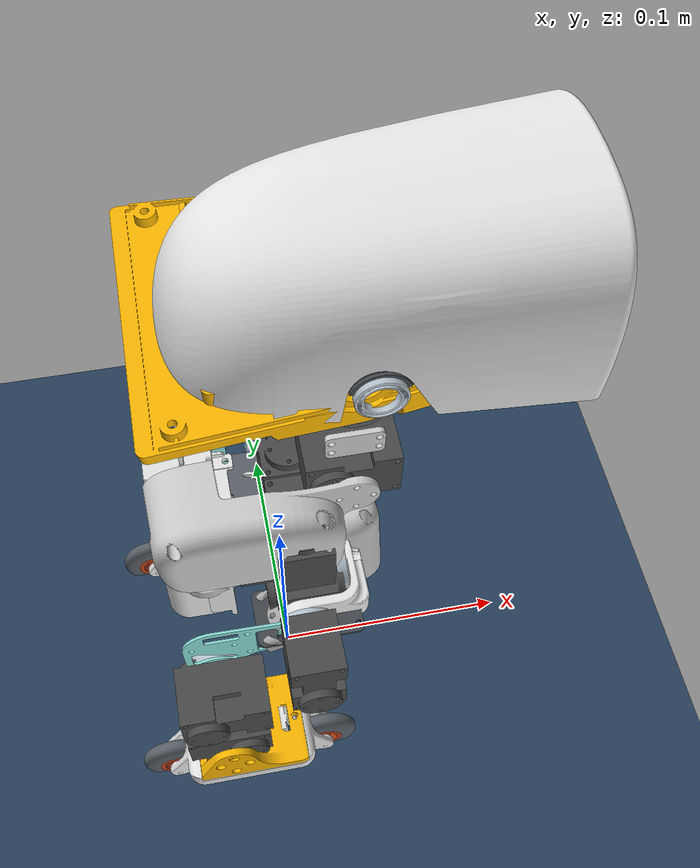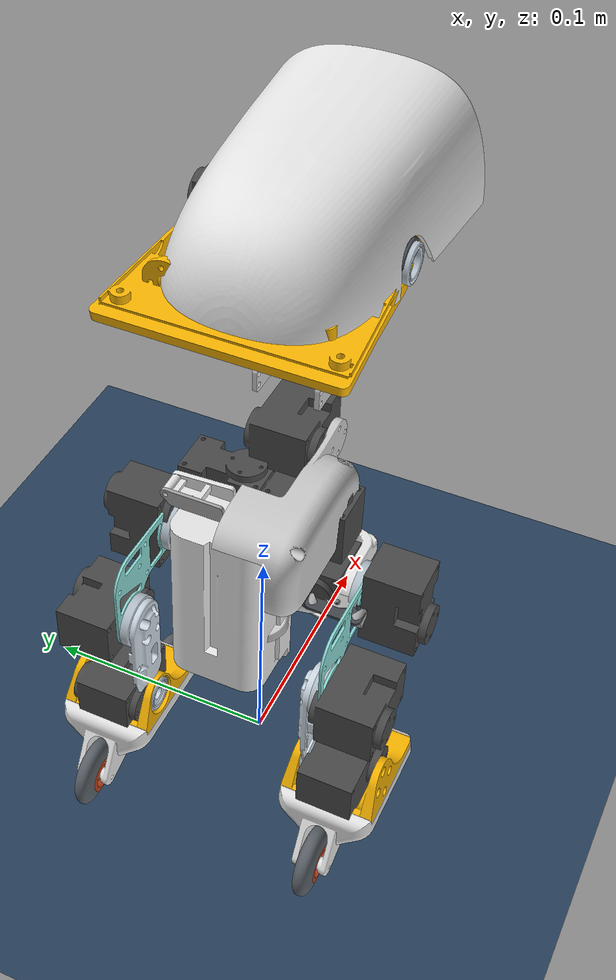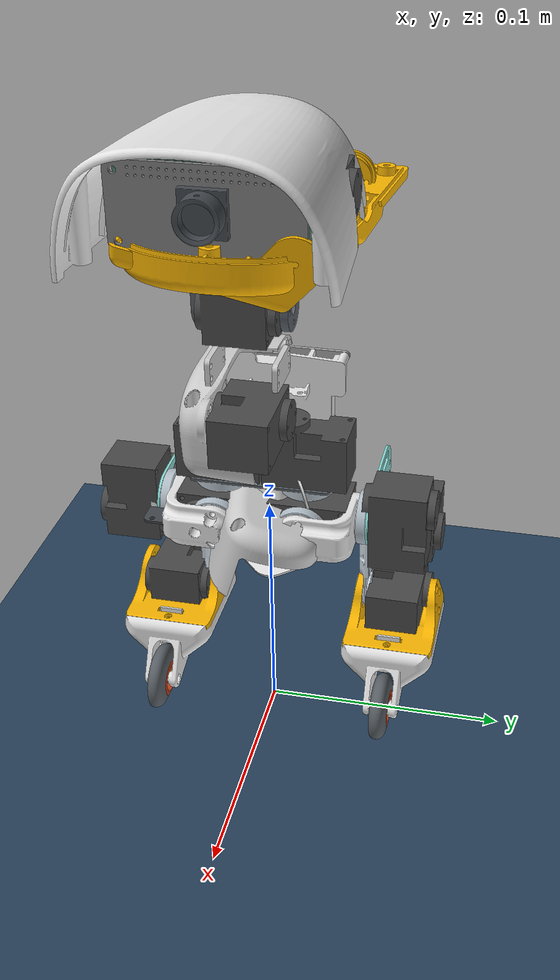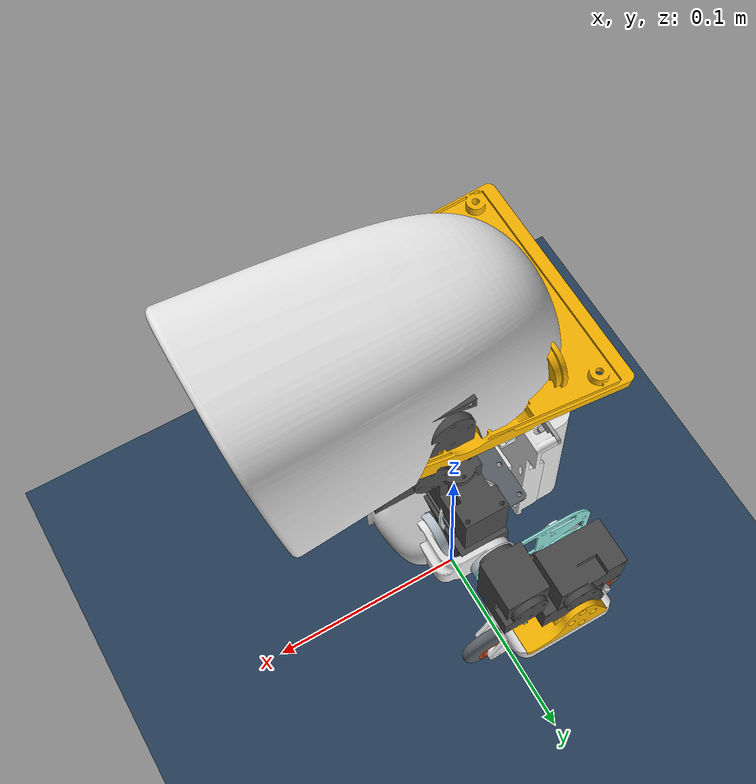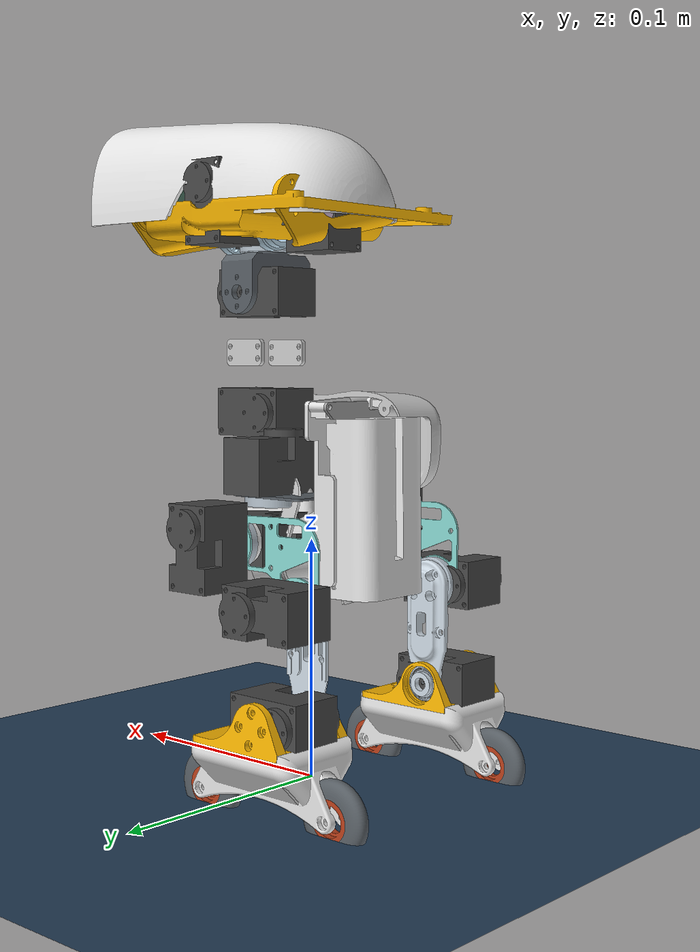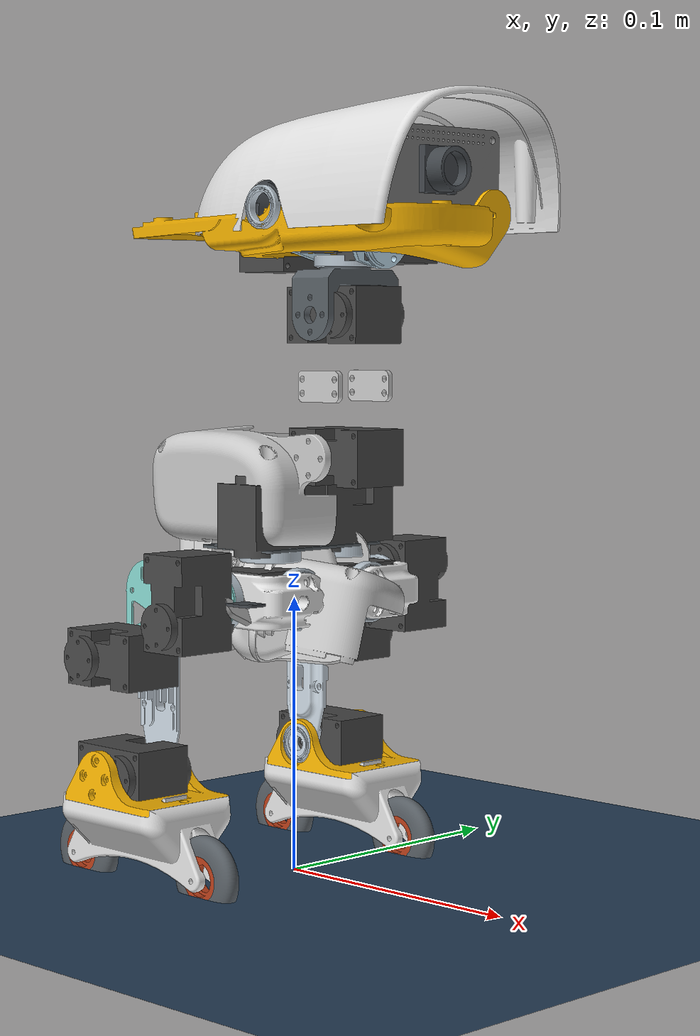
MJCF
<?xml version="1.0" encoding="utf-16"?>
<mujoco model="scene">
  <compiler angle="radian" meshdir="assets/" />
  <size nkey="4" />
  <visual>
    <global azimuth="160" elevation="-20" />
    <headlight ambient="0.3 0.3 0.3" diffuse="0.6 0.6 0.6" specular="0 0 0" />
    <rgba haze="0.15 0.25 0.35 1" />
  </visual>
  <default>
    <equality solref="0.002" solimp="0.99 0.999 0.0005" />
    <default class="microduck">
      <joint armature="0.005" frictionloss="0.1" />
      <equality solref="0.02" solimp="0.9 0.95 0.001" />
      <general biastype="affine" gainprm="50" biasprm="0 -50 1" />
      <default class="visual">
        <geom type="mesh" contype="0" conaffinity="0" group="2" />
      </default>
      <default class="collision">
        <geom group="3" />
      </default>
    </default>
    <default class="perfect_actuator">
      <joint armature="0.001" damping="0.15" frictionloss="0.1" />
      <geom contype="0" conaffinity="0" />
      <equality solref="0.02" solimp="0.9 0.95 0.001" />
      <general forcerange="-20 20" biastype="affine" gainprm="10" biasprm="0 -10 -0.1" />
    </default>
    <default class="chosen_actuator_old">
      <joint armature="0.002" damping="0.048" frictionloss="0.006" />
      <geom contype="0" conaffinity="0" />
      <equality solref="0.02" solimp="0.9 0.95 0.001" />
      <general ctrlrange="-10 10" forcerange="-0.91 0.91" biastype="affine" gainprm="0.52" biasprm="0 -0.52" />
    </default>
    <default class="chosen_actuator_new">
      <joint armature="0.002" damping="0.041" frictionloss="0.032" />
      <geom contype="0" conaffinity="0" />
      <equality solref="0.02" solimp="0.9 0.95 0.001" />
      <general ctrlrange="-10 10" forcerange="-0.67 0.67" biastype="affine" gainprm="0.386" biasprm="0 -0.386" />
    </default>
    <default class="chosen_actuator_antoine">
      <joint armature="0.0017" damping="0.044" frictionloss="0.013" />
      <geom contype="0" conaffinity="0" />
      <equality solref="0.02" solimp="0.9 0.95 0.001" />
      <general ctrlrange="-10 10" forcerange="-0.75 0.75" biastype="affine" gainprm="0.43" biasprm="0 -0.43" />
    </default>
    <default class="chosen_actuator">
      <joint armature="0.0018" damping="0.053" frictionloss="0.0048" />
      <geom contype="0" conaffinity="0" />
      <equality solref="0.02" solimp="0.9 0.95 0.001" />
      <general ctrlrange="-10 10" forcerange="-0.96 0.96" biastype="affine" gainprm="0.55" biasprm="0 -0.55" />
    </default>
    <default class="passive_wheel">
      <joint armature="0.0001" />
      <geom contype="0" conaffinity="0" />
      <equality solref="0.02" solimp="0.9 0.95 0.001" />
    </default>
    <default class="passive_joint">
      <joint armature="0.0001" />
      <geom contype="0" conaffinity="0" />
      <equality solref="0.02" solimp="0.9 0.95 0.001" />
    </default>
    <default class="self_collision_only">
      <geom contype="2" conaffinity="2" group="3" />
    </default>
  </default>
  <asset>
    <texture type="skybox" colorspace="auto" builtin="gradient" rgb1="0.3 0.5 0.7" rgb2="0 0 0" width="512" height="3072" />
    <texture type="2d" colorspace="auto" name="groundplane" builtin="checker" mark="edge" rgb1="0.2 0.3 0.4" rgb2="0.1 0.2 0.3" markrgb="0.8 0.8 0.8" width="300" height="300" />
    <material name="seeed_bearing__configuration__22x16x4_material" rgba="0.713725 0.760784 0.8 1" />
    <material name="right_shell_material" rgba="0.8 0.8 0.8 1" />
    <material name="banana_pcb_locker_material" rgba="0.647059 0.647059 0.647059 1" />
    <material name="trunk_base_material" rgba="0.34902 0.376471 0.4 1" />
    <material name="xl330_material" rgba="0.286275 0.286275 0.286275 1" />
    <material name="power_support_material" rgba="0.901961 0.901961 0.901961 1" />
    <material name="np_f970_material" rgba="0.901961 0.901961 0.901961 1" />
    <material name="left_shell_material" rgba="0.8 0.8 0.8 1" />
    <material name="yaw2roll_material" rgba="0.647059 0.647059 0.647059 1" />
    <material name="bearing_roll_material" rgba="0.262745 0.282353 0.301961 1" />
    <material name="hip_l_material" rgba="0.901961 0.901961 0.901961 1" />
    <material name="upper_leg_left_material" rgba="0.866667 0.866667 0.866667 1" />
    <material name="upper_leg_rigidity_plate_material" rgba="0.537255 0.854902 0.827451 1" />
    <material name="leg_material" rgba="0.811765 0.858824 0.898039 1" />
    <material name="roller_blade_material" rgba="0.901961 0.901961 0.901961 1" />
    <material name="seeed_bearing__configuration_default_material" rgba="0.713725 0.760784 0.8 1" />
    <material name="ankle_l_v1_material" rgba="0.980392 0.713725 0.00392157 1" />
    <material name="tire_material" rgba="0.34902 0.376471 0.4 1" />
    <material name="rim_material" rgba="0.729412 0.25098 0.105882 1" />
    <material name="neck_material" rgba="0.8 0.8 0.8 1" />
    <material name="neck_pitch_material" rgba="0.34902 0.376471 0.4 1" />
    <material name="yaw_roll_motion_material" rgba="0.768627 0.886275 0.952941 1" />
    <material name="lens_material" rgba="0.262745 0.282353 0.301961 1" />
    <material name="face_part_material" rgba="0.34902 0.376471 0.4 1" />
    <material name="jaw_soft_material" rgba="0.85098 0.756863 0.866667 1" />
    <material name="motor_support_material" rgba="0.262745 0.282353 0.301961 1" />
    <material name="top_head_shell_material" rgba="0.901961 0.901961 0.901961 1" />
    <material name="elec_rpi_robot_hat_pcb_material" rgba="0.313725 0.486275 0.411765 1" />
    <material name="soft_mouth_top_material" rgba="0.85098 0.756863 0.866667 1" />
    <material name="noenoeil_material" rgba="0.262745 0.282353 0.301961 1" />
    <material name="jaw_material" rgba="0.980392 0.713725 0.00392157 1" />
    <material name="bottom_head_shell_material" rgba="0.980392 0.713725 0.00392157 1" />
    <material name="m12_lens_holder_material" rgba="0.262745 0.282353 0.301961 1" />
    <material name="pcb__raspberry_pi_zero_2_w_material" rgba="0.498039 0.498039 0.498039 1" />
    <material name="speaker_material" rgba="0.294118 0.290196 0.290196 1" />
    <material name="upper_leg_right_material" rgba="0.866667 0.866667 0.866667 1" />
    <material name="ankle_r_v1_material" rgba="0.980392 0.713725 0.00392157 1" />
    <material name="groundplane" texture="groundplane" texrepeat="5 5" texuniform="true" reflectance="0.2" />
    <mesh name="elec_rpi_robot_hat_pcb" file="elec_rpi_robot_hat_pcb.stl" />
    <mesh name="soft_mouth_top" file="soft_mouth_top.stl" />
    <mesh name="speaker" file="speaker.stl" />
    <mesh name="top_head_shell" file="top_head_shell.stl" />
    <mesh name="power_support" file="power_support.stl" />
    <mesh name="motor_support" file="motor_support.stl" />
    <mesh name="upper_leg_left" file="upper_leg_left.stl" />
    <mesh name="roller_blade" content_type="model/stl" file="roller_blade.stl" />
    <mesh name="m12_lens_holder" file="m12_lens_holder.stl" />
    <mesh name="hip_l" file="hip_l.stl" />
    <mesh name="lens" file="lens.stl" />
    <mesh name="xl330" file="xl330.stl" />
    <mesh name="bearing_roll" file="bearing_roll.stl" />
    <mesh name="bottom_head_shell" file="bottom_head_shell.stl" />
    <mesh name="ankle_r_v1" content_type="model/stl" file="ankle_r_v1.stl" />
    <mesh name="jaw_soft" file="jaw_soft.stl" />
    <mesh name="ankle_l_v1" content_type="model/stl" file="ankle_l_v1.stl" />
    <mesh name="yaw_roll_motion" file="yaw_roll_motion.stl" />
    <mesh name="trunk_base" file="trunk_base.stl" />
    <mesh name="left_shell" file="left_shell.stl" />
    <mesh name="np_f970" file="np_f970.stl" />
    <mesh name="yaw2roll" file="yaw2roll.stl" />
    <mesh name="tire" content_type="model/stl" file="tire.stl" />
    <mesh name="upper_leg_right" file="upper_leg_right.stl" />
    <mesh name="banana_pcb_locker" file="banana_pcb_locker.stl" />
    <mesh name="pcb__raspberry_pi_zero_2_w" file="pcb__raspberry_pi_zero_2_w.stl" />
    <mesh name="leg" file="leg.stl" />
    <mesh name="neck_pitch" file="neck_pitch.stl" />
    <mesh name="jaw" file="jaw.stl" />
    <mesh name="neck" file="neck.stl" />
    <mesh name="face_part" file="face_part.stl" />
    <mesh name="right_shell" file="right_shell.stl" />
    <mesh name="seeed_bearing__configuration__22x16x4" file="seeed_bearing__configuration__22x16x4.stl" />
    <mesh name="upper_leg_rigidity_plate" file="upper_leg_rigidity_plate.stl" />
    <mesh name="seeed_bearing__configuration_default" file="seeed_bearing__configuration_default.stl" />
    <mesh name="noenoeil" file="noenoeil.stl" />
    <mesh name="rim" content_type="model/stl" file="rim.stl" />
  </asset>
  <worldbody>
    <geom name="floor" size="0 0 0.05" type="plane" material="groundplane" />
    <light pos="0 0 3.5" type="directional" />
    <body name="trunk_base" childclass="microduck" pos="0 0 0.12">
      <inertial pos="-0.0226332 -2.70828e-05 0.00280064" quat="0.664866 0.238381 0.235012 0.667756" mass="0.199224" diaginertia="0.000145932 0.000140799 9.85265e-05" />
      <joint name="trunk_base_freejoint" type="free" armature="0" frictionloss="0" />
      <geom class="visual" pos="0.006 0.0175 -0.005" quat="1 0 0 0" material="seeed_bearing__configuration__22x16x4_material" mesh="seeed_bearing__configuration__22x16x4" />
      <geom class="visual" pos="0.004 -0.0005 -0.0175" quat="0.707107 0 0 0.707107" material="right_shell_material" mesh="right_shell" />
      <geom class="visual" pos="0.0042 0 -0.0175215" quat="0.707107 0 0 0.707107" material="banana_pcb_locker_material" mesh="banana_pcb_locker" />
      <geom class="visual" pos="0.004 0 -0.0175" quat="0.707107 0 0 0.707107" material="trunk_base_material" mesh="trunk_base" />
      <geom class="visual" pos="0.006 0.0175 0.0115" quat="0 0.707107 0 0.707107" material="xl330_material" mesh="xl330" />
      <geom class="visual" pos="0.004 0 -0.0175215" quat="0.707107 0 0 0.707107" material="power_support_material" mesh="power_support" />
      <geom class="self_collision_only" pos="0.004 0 -0.0175215" quat="0.707107 0 0 0.707107" type="mesh" material="power_support_material" mesh="power_support" />
      <geom class="visual" pos="-0.0359693 0 -0.00385049" quat="0.00617059 0.70708 -0.70708 -0.00617059" material="np_f970_material" mesh="np_f970" />
      <geom class="collision" pos="-0.0359693 0 -0.00385049" quat="0.00617059 0.70708 -0.70708 -0.00617059" type="mesh" material="np_f970_material" mesh="np_f970" />
      <geom class="visual" pos="0.006 -0.0175 0.0115" quat="0 0.707107 0 0.707107" material="xl330_material" mesh="xl330" />
      <geom class="visual" pos="0.004 0 -0.0175785" quat="0.707107 0 0 0.707107" material="left_shell_material" mesh="left_shell" />
      <geom class="visual" pos="0.006 -0.0175 -0.005" quat="1 0 0 0" material="seeed_bearing__configuration__22x16x4_material" mesh="seeed_bearing__configuration__22x16x4" />
      <site name="imu" group="3" pos="-0.021 6.64098e-05 -0.0146984" />
      <body name="yaw2roll" pos="0.006 0.0175 -0.005" quat="0 -0.707107 -0.707107 0">
        <inertial pos="-8.8e-11 0.00099414 0.0168917" quat="0.99973 -0.0232487 0 0" mass="0.0230406" diaginertia="4.1964e-06 3.41989e-06 2.32413e-06" />
        <joint name="left_hip_yaw" class="chosen_actuator" range="-0.436332 0.523599" axis="0 0 1" />
        <geom class="visual" pos="-0.0175 -0.002 0.0125" quat="0 1 0 0" material="yaw2roll_material" mesh="yaw2roll" />
        <geom class="visual" pos="0 0 0.0125" quat="0 -0.707107 0.707107 0" material="xl330_material" mesh="xl330" />
        <geom class="visual" pos="0 0.0165 0.0125" quat="0.5 0.5 0.5 -0.5" material="seeed_bearing__configuration__22x16x4_material" mesh="seeed_bearing__configuration__22x16x4" />
        <geom class="visual" pos="-0.0175 -0.002 0.0125" quat="0 -1 0 0" material="bearing_roll_material" mesh="bearing_roll" />
        <body name="hip_l" pos="0 0.0165 0.0125" quat="0.707107 -0.707107 0 0">
          <inertial pos="0.014815 1.6179e-08 -0.00829992" quat="0.94694 -8.2459e-07 -0.321411 -2.79883e-07" mass="0.00618934" diaginertia="1.15976e-06 1.15753e-06 3.52458e-07" />
          <joint name="left_hip_roll" class="chosen_actuator" range="-0.383972 0.383972" axis="0 0 1" />
          <geom class="visual" pos="0.021 0 -0.0185" quat="0.5 0.5 0.5 0.5" material="seeed_bearing__configuration__22x16x4_material" mesh="seeed_bearing__configuration__22x16x4" />
          <geom class="visual" pos="-0.0175 0 -0.0185" quat="0.707107 -0.707107 0 0" material="hip_l_material" mesh="hip_l" />
          <geom class="collision" pos="-0.0175 0 -0.0185" quat="0.707107 -0.707107 0 0" type="mesh" material="hip_l_material" mesh="hip_l" />
          <body name="upper_leg_left" pos="0.025 0 -0.0185" quat="0.5 -0.5 0.5 -0.5">
            <inertial pos="0.006766 0.0228838 0.0134531" quat="0.620818 0.374279 -0.583696 0.365786" mass="0.0482067" diaginertia="1.98453e-05 1.9108e-05 8.11799e-06" />
            <joint name="left_hip_pitch" class="chosen_actuator" range="-1.5708 1.5708" axis="0 0 1" />
            <geom class="visual" pos="0 0 -0.0425" quat="0.5 -0.5 -0.5 -0.5" material="upper_leg_left_material" mesh="upper_leg_left" />
            <geom class="visual" pos="0.022 0.0357771 0.0125" quat="0 -0.707107 0 -0.707107" material="xl330_material" mesh="xl330" />
            <geom class="visual" pos="0 0 -0.0425" quat="0.5 -0.5 -0.5 -0.5" material="upper_leg_rigidity_plate_material" mesh="upper_leg_rigidity_plate" />
            <geom class="visual" pos="0.022 0.0357771 -0.004" quat="0 0 0 1" material="seeed_bearing__configuration__22x16x4_material" mesh="seeed_bearing__configuration__22x16x4" />
            <geom class="visual" pos="0 0 0.0125" quat="0.5 0.5 -0.5 0.5" material="xl330_material" mesh="xl330" />
            <body name="leg" pos="0.022 0.0357771 -0.004" quat="0 0.707107 0.707107 0">
              <inertial pos="-1.52e-10 0.0318937 -0.00953505" quat="0.806473 0.591271 0 0" mass="0.0215844" diaginertia="5.25056e-06 4.58054e-06 1.91378e-06" />
              <joint name="left_knee" class="chosen_actuator" range="-1.5708 1.5708" axis="0 0 1" />
              <geom class="visual" pos="-0.022 0.0357771 0.0385" quat="0.5 0.5 0.5 -0.5" material="leg_material" mesh="leg" />
              <geom class="collision" pos="-0.022 0.0357771 0.0385" quat="0.5 0.5 0.5 -0.5" type="mesh" material="leg_material" mesh="leg" />
              <geom class="visual" pos="0 0.042 -0.0115" quat="0.5 -0.5 -0.5 -0.5" material="xl330_material" mesh="xl330" />
              <body name="ankle_l_v1" pos="0 0.042 -0.026" quat="0 1 0 0">
                <inertial pos="-0.00680626 -0.0143677 -0.0151851" quat="0.456101 0.509715 0.499801 0.531377" mass="0.02087" diaginertia="9.70868e-06 8.21708e-06 4.83304e-06" />
                <joint name="left_ankle" class="chosen_actuator" range="-1.5708 1.5708" axis="0 0 1" />
                <geom class="visual" pos="-0.022 0.00622291 -0.0647" quat="0.5 -0.5 -0.5 -0.5" material="roller_blade_material" mesh="roller_blade" />
                <geom class="visual" pos="0 0 -0.0314" quat="0 0 0 -1" material="seeed_bearing__configuration_default_material" mesh="seeed_bearing__configuration_default" />
                <geom class="visual" pos="-0.022 0.00622291 -0.0647" quat="0.5 -0.5 -0.5 -0.5" material="ankle_l_v1_material" mesh="ankle_l_v1" />
                <site name="left_foot" quat="0 0 -0.707107 -0.707107" group="3" pos="0 -0.0475 -0.0147" />
                <body name="tire" pos="-0.0395 -0.0325 -0.0147">
                  <inertial pos="0 0 0" quat="0.499994 0.499994 -0.500006 0.500006" mass="0.00447401" diaginertia="5.3687e-07 2.8556e-07 2.8556e-07" />
                  <joint name="passive_LF_wheel" class="passive_joint" axis="0 0 1" />
                  <geom class="visual" pos="0.0175 0.0387229 -0.05" quat="0.5 -0.5 -0.5 -0.5" material="tire_material" mesh="tire" />
                  <geom class="collision" pos="0.0175 0.0387229 -0.05" quat="0.5 -0.5 -0.5 -0.5" type="mesh" material="tire_material" mesh="tire" />
                  <geom class="visual" pos="0.0175 0.0387229 -0.05" quat="0.5 -0.5 -0.5 -0.5" material="rim_material" mesh="rim" />
                </body>
                <body name="tire_2" pos="0.0255 -0.0325 -0.0147">
                  <inertial pos="0 0 0" quat="0.499994 0.499994 -0.500006 0.500006" mass="0.00447401" diaginertia="5.3687e-07 2.8556e-07 2.8556e-07" />
                  <joint name="passive_LR_wheel" class="passive_joint" axis="0 0 1" />
                  <geom class="visual" pos="0.0175 0.0387229 -0.05" quat="0.5 -0.5 -0.5 -0.5" material="rim_material" mesh="rim" />
                  <geom class="visual" pos="0.0175 0.0387229 -0.05" quat="0.5 -0.5 -0.5 -0.5" material="tire_material" mesh="tire" />
                  <geom class="collision" pos="0.0175 0.0387229 -0.05" quat="0.5 -0.5 -0.5 -0.5" type="mesh" material="tire_material" mesh="tire" />
                </body>
              </body>
            </body>
          </body>
        </body>
      </body>
      <body name="neck" pos="0.026 0.0145 0.0324215" quat="0 0 0.707107 -0.707107">
        <inertial pos="0 -0.025 0.0141665" quat="0.707107 0.707107 0 0" mass="0.0368414" diaginertia="1.72925e-05 1.63707e-05 3.12694e-06" />
        <joint name="neck_pitch" class="chosen_actuator" range="-1.5708 1.0472" axis="0 0 1" />
        <geom class="visual" pos="0.022 0.05 0.028" quat="0.5 0.5 0.5 -0.5" material="neck_material" mesh="neck" />
        <geom class="visual" pos="0 0 0.0145" quat="0.5 -0.5 -0.5 -0.5" material="xl330_material" mesh="xl330" />
        <geom class="visual" pos="0 -0.05 0.0145" quat="0.5 0.5 -0.5 0.5" material="xl330_material" mesh="xl330" />
        <geom class="visual" pos="0.022 0.05 0.003" quat="0.5 0.5 0.5 -0.5" material="neck_material" mesh="neck" />
        <body name="neck_pitch" pos="0 -0.05 0" quat="0 1 0 0">
          <inertial pos="-6.533e-09 0.0116641 -0.0145" mass="0.00572" diaginertia="1.09186e-06 9.66855e-07 5.12111e-07" />
          <joint name="head_pitch" class="chosen_actuator" range="-1.5708 1.5708" axis="0 0 1" />
          <geom class="visual" pos="0 0.0287931 -0.0145" quat="0.5 -0.5 -0.5 -0.5" material="neck_pitch_material" mesh="neck_pitch" />
          <geom class="visual" pos="0 0.0207931 -0.0145" quat="0.707107 0.707107 0 0" material="seeed_bearing__configuration__22x16x4_material" mesh="seeed_bearing__configuration__22x16x4" />
          <body name="yaw_roll_motion" pos="0 0.0186931 -0.0145" quat="0 0 -0.707107 -0.707107">
            <inertial pos="-0.000166657 -0.00500964 0.0178065" quat="0.174483 0.690172 -0.0192577 0.702031" mass="0.0486" diaginertia="9.65512e-06 8.11788e-06 6.8878e-06" />
            <joint name="head_yaw" class="chosen_actuator" range="-2.96706 2.96706" axis="0 0 1" />
            <geom class="visual" pos="0 0 0.01" quat="0.707107 0 0 0.707107" material="yaw_roll_motion_material" mesh="yaw_roll_motion" />
            <geom class="visual" pos="0 0 0.0145" quat="0.5 -0.5 -0.5 -0.5" material="xl330_material" mesh="xl330" />
            <geom class="visual" pos="-0.016 0 0.0145" quat="0.707107 0 -0.707107 0" material="seeed_bearing__configuration__22x16x4_material" mesh="seeed_bearing__configuration__22x16x4" />
            <geom class="visual" pos="0.018 0 0.0145" quat="0.707107 0 -0.707107 0" material="seeed_bearing__configuration__22x16x4_material" mesh="seeed_bearing__configuration__22x16x4" />
            <body name="jaw_soft" pos="-0.0179 0 0.0145" quat="0.707107 0 -0.707107 0">
              <inertial pos="0.00460523 0.00120047 -0.0324761" quat="0.999608 0.0201487 -0.0191643 -0.00313927" mass="0.188766" diaginertia="0.000321068 0.000254266 0.000149461" />
              <joint name="head_roll" class="chosen_actuator" range="-0.436332 0.436332" axis="0 0 1" />
              <geom class="visual" pos="0.0155 -9.13778e-05 -0.05548" quat="0.5 -0.5 0.5 -0.5" material="lens_material" mesh="lens" />
              <geom class="visual" pos="-0.0045 -9.13778e-05 -0.0178" quat="0.5 0.5 0.5 0.5" material="face_part_material" mesh="face_part" />
              <geom class="visual" pos="0.003 0.0255 -0.018" quat="0.707107 0 0 -0.707107" material="xl330_material" mesh="xl330" />
              <geom class="visual" pos="-0.0046 0 -0.0179996" quat="0.5 0.5 0.5 0.5" material="jaw_soft_material" mesh="jaw_soft" />
              <geom class="visual" pos="-0.0045 0 -0.018" quat="0.5 0.5 0.5 0.5" material="motor_support_material" mesh="motor_support" />
              <geom class="visual" pos="-0.0045 0 -0.018" quat="0.5 0.5 0.5 0.5" material="top_head_shell_material" mesh="top_head_shell" />
              <geom class="collision" pos="-0.0045 0 -0.018" quat="0.5 0.5 0.5 0.5" type="mesh" material="top_head_shell_material" mesh="top_head_shell" />
              <geom class="visual" pos="0 0 0.0145" quat="0.5 -0.5 -0.5 -0.5" material="xl330_material" mesh="xl330" />
              <geom class="visual" pos="0.0032 -0.04 -0.018" quat="0.5 -0.5 0.5 0.5" material="seeed_bearing__configuration_default_material" mesh="seeed_bearing__configuration_default" />
              <geom class="visual" pos="0.02694 0.0289936 -0.0519" quat="0.707107 0 0 -0.707107" material="elec_rpi_robot_hat_pcb_material" mesh="elec_rpi_robot_hat_pcb" />
              <geom class="visual" pos="-0.00420071 1.7776e-08 -0.0180814" quat="0.5 0.5 0.5 0.5" material="soft_mouth_top_material" mesh="soft_mouth_top" />
              <geom class="visual" pos="-0.0045 -9.13778e-05 -0.0178" quat="0.5 0.5 0.5 0.5" material="noenoeil_material" mesh="noenoeil" />
              <geom class="visual" pos="-0.0045 0 -0.018" quat="0.5 0.5 0.5 0.5" material="jaw_material" mesh="jaw" />
              <geom class="collision" pos="-0.0045 0 -0.018" quat="0.5 0.5 0.5 0.5" type="mesh" material="jaw_material" mesh="jaw" />
              <geom class="visual" pos="-0.0043 0 -0.018" quat="0.5 0.5 0.5 0.5" material="bottom_head_shell_material" mesh="bottom_head_shell" />
              <geom class="collision" pos="-0.0043 0 -0.018" quat="0.5 0.5 0.5 0.5" type="mesh" material="bottom_head_shell_material" mesh="bottom_head_shell" />
              <geom class="visual" pos="0.0155 -9.13778e-05 -0.05558" quat="0.5 -0.5 0.5 -0.5" material="m12_lens_holder_material" mesh="m12_lens_holder" />
              <geom class="visual" pos="0.015435 -1.13778e-05 -0.06001" quat="0.5 -0.5 -0.5 0.5" material="pcb__raspberry_pi_zero_2_w_material" mesh="pcb__raspberry_pi_zero_2_w" />
              <geom class="visual" pos="0.01 -0.016786 0.0260226" quat="0.5 0.5 0.5 0.5" material="speaker_material" mesh="speaker" />
              <site name="head_camera" quat="0.707107 0 0.707107 0" group="3" pos="0.0155 -9.13778e-05 -0.0733" />
              <site name="tof" quat="0.707107 0 0.707107 0" group="3" pos="0.0135 0.0224086 -0.0733" />
              <site name="head_imu" group="3" pos="0.0152323 0.000111069 -0.05106" />
              <site name="mouth_tip" quat="0.704015 0 0.710185 0" group="3" pos="-0.00809334 0 -0.0777383" />
              <camera name="head_camera" quat="0 0 -1 0" pos="0.0155 -9.13778e-05 -0.0733" />
            </body>
          </body>
        </body>
      </body>
      <body name="bearing_roll" pos="0.006 -0.0175 -0.005" quat="0 0.707107 0.707107 0">
        <inertial pos="-8.8e-11 0.00099414 0.0168917" quat="0.99973 -0.0232487 0 0" mass="0.0230406" diaginertia="4.1964e-06 3.41989e-06 2.32413e-06" />
        <joint name="right_hip_yaw" class="chosen_actuator" range="-0.523599 0.436332" axis="0 0 1" />
        <geom class="visual" pos="-0.0175 -0.002 0.0125" quat="0 1 0 0" material="yaw2roll_material" mesh="yaw2roll" />
        <geom class="visual" pos="0 0 0.0125" quat="0 -0.707107 0.707107 0" material="xl330_material" mesh="xl330" />
        <geom class="visual" pos="-0.0175 -0.002 0.0125" quat="0 -1 0 0" material="bearing_roll_material" mesh="bearing_roll" />
        <geom class="visual" pos="0 0.0165 0.0125" quat="0.5 0.5 0.5 -0.5" material="seeed_bearing__configuration__22x16x4_material" mesh="seeed_bearing__configuration__22x16x4" />
        <body name="hip_l_2" pos="0 0.0165 0.0125" quat="0 0 0.707107 0.707107">
          <inertial pos="0.014815 1.6212e-08 -0.00829992" quat="0.94694 -8.2459e-07 -0.321411 -2.79883e-07" mass="0.00618934" diaginertia="1.15976e-06 1.15753e-06 3.52458e-07" />
          <joint name="right_hip_roll" class="chosen_actuator" range="-0.383972 0.383972" axis="0 0 1" />
          <geom class="visual" pos="-0.0175 0 -0.0185" quat="0.707107 -0.707107 0 0" material="hip_l_material" mesh="hip_l" />
          <geom class="collision" pos="-0.0175 0 -0.0185" quat="0.707107 -0.707107 0 0" type="mesh" material="hip_l_material" mesh="hip_l" />
          <geom class="visual" pos="0.025 0 -0.0185" quat="0.5 0.5 -0.5 -0.5" material="seeed_bearing__configuration__22x16x4_material" mesh="seeed_bearing__configuration__22x16x4" />
          <body name="upper_leg_right" pos="0.025 0 -0.0185" quat="0.5 -0.5 0.5 -0.5">
            <inertial pos="-0.006766 0.0228838 0.0134531" quat="0.365786 0.583696 -0.374279 0.620818" mass="0.0482067" diaginertia="1.98453e-05 1.9108e-05 8.11799e-06" />
            <joint name="right_hip_pitch" class="chosen_actuator" range="-1.5708 1.5708" axis="0 0 1" />
            <geom class="visual" pos="-0.022 0.0357771 0.0125" quat="0.707107 0 -0.707107 0" material="xl330_material" mesh="xl330" />
            <geom class="visual" pos="-0.022 0.0357771 0" quat="0 1 0 0" material="seeed_bearing__configuration__22x16x4_material" mesh="seeed_bearing__configuration__22x16x4" />
            <geom class="visual" pos="0 0 0.0435" quat="0.5 -0.5 0.5 0.5" material="upper_leg_rigidity_plate_material" mesh="upper_leg_rigidity_plate" />
            <geom class="visual" pos="0 0 -0.0425" quat="0.5 -0.5 0.5 0.5" material="upper_leg_right_material" mesh="upper_leg_right" />
            <geom class="visual" pos="0 0 0.0125" quat="0.5 0.5 -0.5 0.5" material="xl330_material" mesh="xl330" />
            <body name="leg_2" pos="-0.022 0.0357771 -0.004" quat="0 1 0 0">
              <inertial pos="-0.0318937 -1.52e-10 -0.00953505" quat="0.570263 0.418091 0.418091 0.570263" mass="0.0215844" diaginertia="5.25056e-06 4.58054e-06 1.91378e-06" />
              <joint name="right_knee" class="chosen_actuator" range="-1.5708 1.5708" axis="0 0 1" />
              <geom class="visual" pos="-0.042 0 -0.0115" quat="0.707107 0 -0.707107 0" material="xl330_material" mesh="xl330" />
              <geom class="visual" pos="-0.0357771 -0.022 0.0385" quat="0.707107 0 0.707107 0" material="leg_material" mesh="leg" />
              <geom class="collision" pos="-0.0357771 -0.022 0.0385" quat="0.707107 0 0.707107 0" type="mesh" material="leg_material" mesh="leg" />
              <body name="ankle_r_v1" pos="-0.042 0 -0.026" quat="0 -0.707107 -0.707107 0">
                <inertial pos="0.00680653 -0.0143679 -0.0149822" quat="0.495063 0.535457 0.449196 0.51616" mass="0.0208701" diaginertia="9.71926e-06 8.21082e-06 4.83671e-06" />
                <joint name="right_ankle" class="chosen_actuator" range="-1.5708 1.5708" axis="0 0 1" />
                <geom class="visual" pos="0.022 0.00622291 -0.0647" quat="0.5 -0.5 0.5 0.5" material="ankle_r_v1_material" mesh="ankle_r_v1" />
                <geom class="visual" pos="0 0 -0.0284" quat="0 1 0 0" material="seeed_bearing__configuration_default_material" mesh="seeed_bearing__configuration_default" />
                <geom class="visual" pos="0.022 0.00622291 0.0355181" quat="0.5 -0.5 0.5 0.5" material="roller_blade_material" mesh="roller_blade" />
                <site name="right_foot" quat="0.707107 -0.707107 0 0" group="3" pos="0 -0.0475 -0.0144819" />
                <body name="tire_3" pos="0.0395 -0.0325 -0.0144819" quat="0 0 1 0">
                  <inertial pos="0 0 0" quat="0.499994 0.499994 -0.500006 0.500006" mass="0.00447401" diaginertia="5.3687e-07 2.8556e-07 2.8556e-07" />
                  <joint name="passive_RF_wheel" class="passive_joint" axis="0 0 1" />
                  <geom class="visual" pos="0.0175 0.0387229 -0.05" quat="0.5 -0.5 -0.5 -0.5" material="tire_material" mesh="tire" />
                  <geom class="collision" pos="0.0175 0.0387229 -0.05" quat="0.5 -0.5 -0.5 -0.5" type="mesh" material="tire_material" mesh="tire" />
                  <geom class="visual" pos="0.0175 0.0387229 -0.05" quat="0.5 -0.5 -0.5 -0.5" material="rim_material" mesh="rim" />
                </body>
                <body name="tire_4" pos="-0.0255 -0.0325 -0.0144819" quat="0 0 1 0">
                  <inertial pos="0 0 0" quat="0.499994 0.499994 -0.500006 0.500006" mass="0.00447401" diaginertia="5.3687e-07 2.8556e-07 2.8556e-07" />
                  <joint name="passive_RR_wheel" class="passive_joint" axis="0 0 1" />
                  <geom class="visual" pos="0.0175 0.0387229 -0.05" quat="0.5 -0.5 -0.5 -0.5" material="rim_material" mesh="rim" />
                  <geom class="visual" pos="0.0175 0.0387229 -0.05" quat="0.5 -0.5 -0.5 -0.5" material="tire_material" mesh="tire" />
                  <geom class="collision" pos="0.0175 0.0387229 -0.05" quat="0.5 -0.5 -0.5 -0.5" type="mesh" material="tire_material" mesh="tire" />
                </body>
              </body>
            </body>
          </body>
        </body>
      </body>
    </body>
  </worldbody>
  <actuator>
    <general name="left_hip_yaw" class="chosen_actuator" joint="left_hip_yaw" />
    <general name="left_hip_roll" class="chosen_actuator" joint="left_hip_roll" />
    <general name="left_hip_pitch" class="chosen_actuator" joint="left_hip_pitch" />
    <general name="left_knee" class="chosen_actuator" joint="left_knee" />
    <general name="left_ankle" class="chosen_actuator" joint="left_ankle" />
    <general name="neck_pitch" class="chosen_actuator" joint="neck_pitch" />
    <general name="head_pitch" class="chosen_actuator" joint="head_pitch" />
    <general name="head_yaw" class="chosen_actuator" joint="head_yaw" />
    <general name="head_roll" class="chosen_actuator" joint="head_roll" />
    <general name="right_hip_yaw" class="chosen_actuator" joint="right_hip_yaw" />
    <general name="right_hip_roll" class="chosen_actuator" joint="right_hip_roll" />
    <general name="right_hip_pitch" class="chosen_actuator" joint="right_hip_pitch" />
    <general name="right_knee" class="chosen_actuator" joint="right_knee" />
    <general name="right_ankle" class="chosen_actuator" joint="right_ankle" />
  </actuator>
  <sensor>
    <framequat objtype="site" objname="imu" name="orientation" noise="0.001" />
    <gyro site="imu" name="angular-velocity" noise="0.005" />
    <gyro site="imu" name="imu_ang_vel" />
    <velocimeter site="imu" name="imu_lin_vel" />
    <accelerometer site="imu" name="imu_accel" />
    <subtreeangmom body="trunk_base" name="root_angmom" />
  </sensor>
  <keyframe>
    <key name="INIT" />
    <key name="STAND" qpos="0 0 0.12 1 0 0 0 0 -0.0872665 -0.457924 -0.00494 0.452984 0 0 0.349066 0.349066 0 0 0 0.0872665 0.457924 0.00494 -0.452984 0 0" ctrl="0 -0.0872665 -0.457924 -0.00494 0.452984 0.349066 0.349066 0 0 0 0.0872665 0.457924 0.00494 -0.452984" />
    <key name="SIT" qpos="0 0 0.07 1 0 0 0 0 0 -0.5236 1.0472 0 0 0 0.5 1.6 0 0 0 0 0.5236 -1.0472 0 0 0" ctrl="0 0 -0.5236 1.0472 0 0.5 1.6 0 0 0 0 0.5236 -1.0472 0" />
    <key name="FOLD" qpos="0 0 0.07 1 0 0 0 0 0 1.57 1.57 0 0 0 1 1 0 0 0 0 -1.57 -1.57 0 0 0" ctrl="0 0 1.57 1.57 0 1 1 0 0 0 0 -1.57 -1.57 0" />
  </keyframe>
</mujoco>
